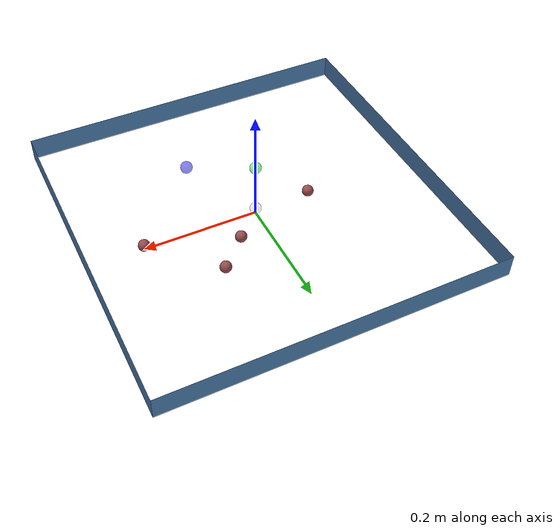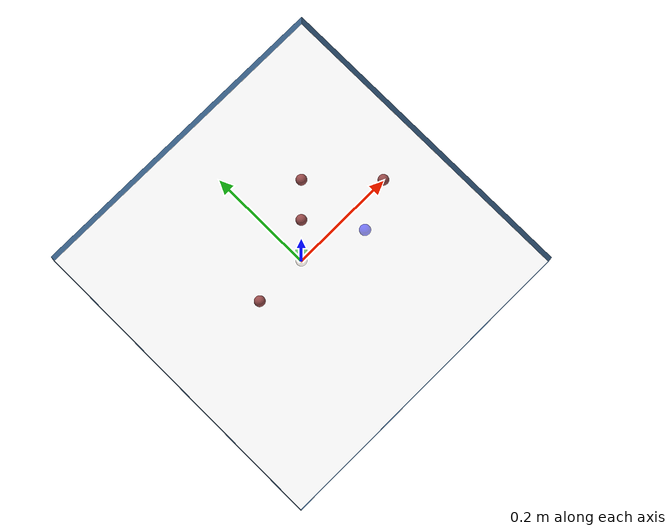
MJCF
<mujoco model="world">
  <visual>
    <quality shadowsize="2048"/>
    <headlight ambient="0.40000000000000002 0.40000000000000002 0.40000000000000002" diffuse="0.80000000000000004 0.80000000000000004 0.80000000000000004" specular="0.10000000000000001 0.10000000000000001 0.10000000000000001"/>
    <map znear="0.01"/>
  </visual>
  <default>
    <default class="/"/>
    <default class="point_mass/">
      <joint type="hinge" axis="0 0 1" limited="true" range="-0.28999999999999998 0.28999999999999998" damping="1.0"/>
      <motor ctrllimited="true" ctrlrange="-1 1" gear="0.10000000000000001"/>
    </default>
    <default class="sphere_0/"/>
    <default class="sphere_1/"/>
    <default class="sphere_2/"/>
    <default class="sphere_3/"/>
  </default>
  <asset>
    <texture name="skybox" type="skybox" builtin="gradient" rgb1="0.40000000000000002 0.59999999999999998 0.80000000000000004" rgb2="0 0 0" mark="random" markrgb="1 1 1" width="800" height="800"/>
    <texture name="grid" type="2d" builtin="checker" rgb1="0.10000000000000001 0.20000000000000001 0.29999999999999999" rgb2="0.20000000000000001 0.29999999999999999 0.40000000000000002" mark="edge" markrgb="0.20000000000000001 0.29999999999999999 0.40000000000000002" width="300" height="300"/>
    <material name="grid" class="/" texrepeat="1 1" texuniform="true" reflectance="0.2"/>
    <material name="decoration" class="/" rgba="0.29999999999999999 0.5 0.69999999999999996 1"/>
    <material name="init_marker" class="/" rgba="0 0 1 0.5"/>
    <material name="goal_marker" class="/" rgba="0 1 0 0.5"/>
    <material name="point_mass/self" class="point_mass/" rgba="0.69999999999999996 0.5 0.29999999999999999 0.10000000000000001"/>
    <material name="sphere_0/obstacle" class="sphere_0/" rgba="0.59999999999999998 0.29999999999999999 0.29999999999999999 1"/>
    <material name="sphere_1/obstacle" class="sphere_1/" rgba="0.59999999999999998 0.29999999999999999 0.29999999999999999 1"/>
    <material name="sphere_2/obstacle" class="sphere_2/" rgba="0.59999999999999998 0.29999999999999999 0.29999999999999999 1"/>
    <material name="sphere_3/obstacle" class="sphere_3/" rgba="0.59999999999999998 0.29999999999999999 0.29999999999999999 1"/>
  </asset>
  <worldbody>
    <light name="//unnamed_light_0" class="/" pos="0 0 1"/>
    <camera name="fixed" class="/" pos="0 0 0.75" quat="1 0 0 0"/>
    <geom name="ground" class="/" type="plane" size="0.29999999999999999 0.29999999999999999 0.10000000000000001" material="grid" pos="0 0 0"/>
    <geom name="wall_x" class="/" type="plane" size="0.02 0.29999999999999999 0.02" material="decoration" pos="-0.29999999999999999 0 0.02" zaxis="1 0 0"/>
    <geom name="wall_y" class="/" type="plane" size="0.29999999999999999 0.02 0.02" material="decoration" pos="0 -0.29999999999999999 0.02" zaxis="0 1 0"/>
    <geom name="wall_neg_x" class="/" type="plane" size="0.02 0.29999999999999999 0.02" material="decoration" pos="0.29999999999999999 0 0.02" zaxis="-1 0 0"/>
    <geom name="wall_neg_y" class="/" type="plane" size="0.29999999999999999 0.02 0.02" material="decoration" pos="0 0.29999999999999999 0.02" zaxis="0 -1 0"/>
    <geom name="init_marker" class="/" type="sphere" size="0.01" material="init_marker" pos="0.10000000149011612 -0.05000000074505806 0.10000000000000001"/>
    <geom name="goal_marker" class="/" type="sphere" size="0.01" material="goal_marker" pos="0 0 0.10000000000000001"/>
    <body name="point_mass/">
      <body name="point_mass//unnamed_body_0" pos="0 0 0.01">
        <joint name="point_mass/root_x" class="point_mass/" type="slide" pos="0 0 0" axis="1 0 0"/>
        <joint name="point_mass/root_y" class="point_mass/" type="slide" pos="0 0 0" axis="0 1 0"/>
        <geom name="point_mass//unnamed_geom_0" class="point_mass/" type="sphere" size="0.01" material="point_mass/self" mass="0.3"/>
      </body>
    </body>
    <body name="sphere_0/">
      <geom name="sphere_0/obstacle" class="sphere_0/" type="sphere" size="0.0099999997764825821" material="sphere_0/obstacle" pos="0.05000000074505806 0.05000000074505806 0.0099999997764825821"/>
    </body>
    <body name="sphere_1/">
      <geom name="sphere_1/obstacle" class="sphere_1/" type="sphere" size="0.0099999997764825821" material="sphere_1/obstacle" pos="0.20000000298023224 0 0.0099999997764825821"/>
    </body>
    <body name="sphere_2/">
      <geom name="sphere_2/obstacle" class="sphere_2/" type="sphere" size="0.0099999997764825821" material="sphere_2/obstacle" pos="0.10000000149011612 0.10000000149011612 0.0099999997764825821"/>
    </body>
    <body name="sphere_3/">
      <geom name="sphere_3/obstacle" class="sphere_3/" type="sphere" size="0.0099999997764825821" material="sphere_3/obstacle" pos="-0.10000000149011612 0 0.0099999997764825821"/>
    </body>
  </worldbody>
  <tendon>
    <fixed name="point_mass/t1" class="point_mass/">
      <joint joint="point_mass/root_x" coef="1.0"/>
      <joint joint="point_mass/root_y" coef="0.0"/>
    </fixed>
    <fixed name="point_mass/t2" class="point_mass/">
      <joint joint="point_mass/root_x" coef="0.0"/>
      <joint joint="point_mass/root_y" coef="1.0"/>
    </fixed>
  </tendon>
  <actuator>
    <motor name="point_mass/t1" class="point_mass/" tendon="point_mass/t1"/>
    <motor name="point_mass/t2" class="point_mass/" tendon="point_mass/t2"/>
  </actuator>
</mujoco>
